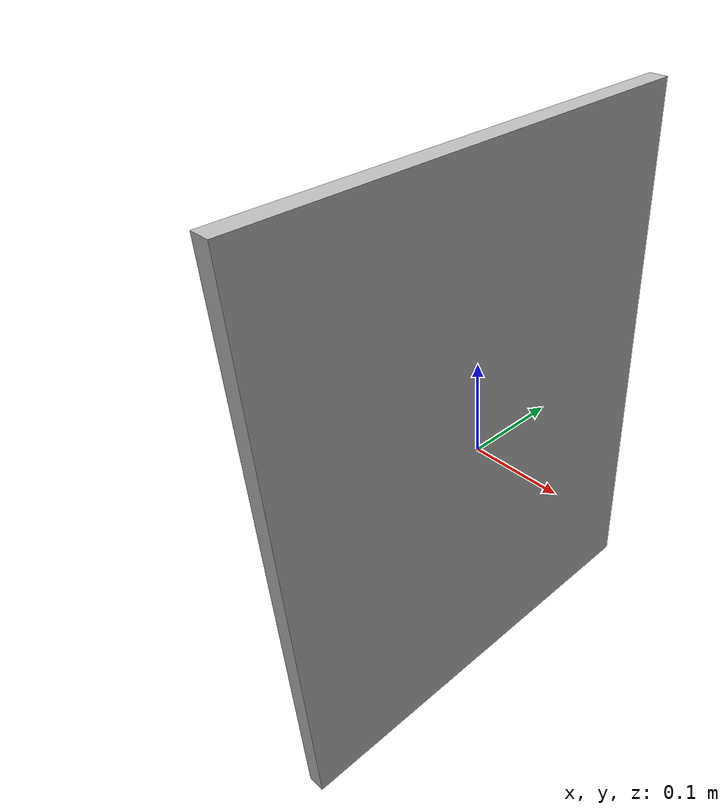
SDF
<?xml version="1.0"?>
<sdf version="1.6">
  <model name="face_board">
    <static>true</static>
    <link name="board">
      <pose>0 0 0 0 0 0</pose>

      <visual name="face">
        <geometry>
          <box>
            <size>0.02 0.5 0.62</size>
          </box>
        </geometry>
        <!-- 使用 OGRE 材质脚本 + 高对比度人脸纹理（不依赖场景光照，醒目可见） -->
        <material>
          <script>
            <uri>model://face_board/materials/scripts</uri>
            <uri>model://face_board/materials/textures</uri>
            <name>face_board/face</name>
          </script>
        </material>
      </visual>

      <collision name="collision">
        <geometry>
          <box>
            <size>0.02 0.5 0.62</size>
          </box>
        </geometry>
      </collision>
    </link>
  </model>
</sdf>
